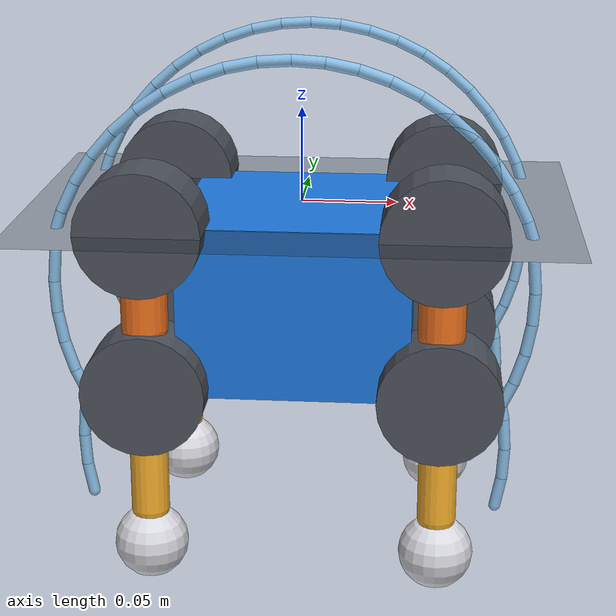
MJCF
<mujoco model="curl_robot_3d">

          <compiler angle="radian" autolimits="true"/>
          <option timestep="0.001" gravity="0 0 -9.81"
                  integrator="implicitfast" cone="elliptic"
                  iterations="20" ls_iterations="10"/>

          <visual>
            <global azimuth="120" elevation="-12" offwidth="960" offheight="720"/>
            <headlight ambient="0.35 0.35 0.35"
                       diffuse="0.65 0.65 0.65"
                       specular="0.20 0.20 0.20"/>
          </visual>

          <asset>
            <texture type="skybox" builtin="gradient" rgb1=".18 .23 .30"
                     rgb2=".02 .03 .05" width="512" height="512"/>
            <texture name="grid" type="2d" builtin="checker" width="512"
                     height="512" rgb1=".18 .22 .27" rgb2=".10 .13 .17"/>
            <material name="ground" texture="grid" texrepeat="1 1"
                      texuniform="true" reflectance="0.05"/>
          </asset>

          <default>
            <joint limited="true"/>
            <geom contype="0" conaffinity="1" condim="3"
                  friction="0.8 0.02 0.01"
                  solref="0.01 1" solimp="0.9 0.95 0.001"/>
            <default class="single_abduction_joint">
              <joint damping="0.01"
                     armature="0.0016"
                     range="-0.5235987756 3.665191429"/>
            </default>
            <default class="single_hip_joint">
              <joint damping="0.01"
                     armature="0.0016"
                     range="-2.268928028 1.396263402"/>
            </default>
            <default class="single_knee_joint">
              <joint damping="0.01"
                     armature="0.0016"
                     range="-0.3490658504 2.129301687"/>
            </default>
            <default class="single_servo">
              <general forcelimited="true"
                       forcerange="-3 3"
                       ctrllimited="true"
                       gainprm="5 0 0"
                       biastype="affine"
                       biasprm="0 -5 -0.1"/>
            </default>
            <default class="rolling_shell">
              <geom type="capsule" size="0.003"
                    contype="4" conaffinity="3"
                    solref="0.003 1" solimp="0.95 0.99 0.001"
                    group="1" rgba="0.55 0.78 0.95 0.88"/>
            </default>
            <default class="structure_collision">
              <geom contype="2" conaffinity="7"
                    solref="0.003 1" solimp="0.95 0.99 0.001"/>
            </default>
          </default>

          <worldbody>
            <light name="key" directional="true" castshadow="true"
                   pos="-1 -2 4" dir="0.25 0.15 -1"
                   diffuse="0.85 0.85 0.82" specular="0.20 0.20 0.20"/>
            <light name="fill" directional="true" castshadow="false"
                   pos="1 2 3" dir="-0.20 -0.30 -1"
                   diffuse="0.30 0.36 0.45" specular="0.05 0.05 0.05"/>
            <camera name="tracking" mode="targetbody" target="torso"
                    pos="0.45 -0.55 0.35"/>
            <geom name="floor" type="plane" size="12 6 0.05"
                  contype="1" conaffinity="1" material="ground"/>

            <body name="torso" pos="0 0 0">
              <freejoint name="root"/>
              <inertial pos="0.025 0 0.015"
                        mass="1.506"
                        diaginertia="0.002042720378 0.0085 0.0085"/>
              <geom name="torso_box_proxy" type="box"
                    class="structure_collision"
                    pos="0 0 -0.04507"
                    size="0.06 0.06 0.04507"
                    rgba="0.12 0.48 0.88 1"/>
<geom name="torso_left_shell_02" class="rolling_shell" fromto="0.1202577654 0.06 -0.007294097808 0.1150230018 0.06 0.008127018407"/>
<geom name="torso_left_shell_03" class="rolling_shell" fromto="0.1150230018 0.06 0.008127018407 0.1078201628 0.06 0.02273293108"/>
<geom name="torso_left_shell_04" class="rolling_shell" fromto="0.1078201628 0.06 0.02273293108 0.09877249087 0.06 0.03627372899"/>
<geom name="torso_left_shell_05" class="rolling_shell" fromto="0.09877249087 0.06 0.03627372899 0.08803479426 0.06 0.04851772533"/>
<geom name="torso_left_shell_06" class="rolling_shell" fromto="0.08803479426 0.06 0.04851772533 0.07579079791 0.06 0.05925542194"/>
<geom name="torso_left_shell_07" class="rolling_shell" fromto="0.07579079791 0.06 0.05925542194 0.06225 0.06 0.06830309385"/>
<geom name="torso_left_shell_08" class="rolling_shell" fromto="0.06225 0.06 0.06830309385 0.04764408733 0.06 0.07550593287"/>
<geom name="torso_left_shell_09" class="rolling_shell" fromto="0.04764408733 0.06 0.07550593287 0.03222297112 0.06 0.08074069645"/>
<geom name="torso_left_shell_10" class="rolling_shell" fromto="0.03222297112 0.06 0.08074069645 0.01625051093 0.06 0.08391781632"/>
<geom name="torso_left_shell_11" class="rolling_shell" fromto="0.01625051093 0.06 0.08391781632 7.623426325e-18 0.06 0.08498293108"/>
<geom name="torso_left_shell_12" class="rolling_shell" fromto="7.623426325e-18 0.06 0.08498293108 -0.01625051093 0.06 0.08391781632"/>
<geom name="torso_left_shell_13" class="rolling_shell" fromto="-0.01625051093 0.06 0.08391781632 -0.03222297112 0.06 0.08074069645"/>
<geom name="torso_left_shell_14" class="rolling_shell" fromto="-0.03222297112 0.06 0.08074069645 -0.04764408733 0.06 0.07550593287"/>
<geom name="torso_left_shell_15" class="rolling_shell" fromto="-0.04764408733 0.06 0.07550593287 -0.06225 0.06 0.06830309385"/>
<geom name="torso_left_shell_16" class="rolling_shell" fromto="-0.06225 0.06 0.06830309385 -0.07579079791 0.06 0.05925542194"/>
<geom name="torso_left_shell_17" class="rolling_shell" fromto="-0.07579079791 0.06 0.05925542194 -0.08803479426 0.06 0.04851772533"/>
<geom name="torso_left_shell_18" class="rolling_shell" fromto="-0.08803479426 0.06 0.04851772533 -0.09877249087 0.06 0.03627372899"/>
<geom name="torso_left_shell_19" class="rolling_shell" fromto="-0.09877249087 0.06 0.03627372899 -0.1078201628 0.06 0.02273293108"/>
<geom name="torso_left_shell_20" class="rolling_shell" fromto="-0.1078201628 0.06 0.02273293108 -0.1150230018 0.06 0.008127018407"/>
<geom name="torso_left_shell_21" class="rolling_shell" fromto="-0.1150230018 0.06 0.008127018407 -0.1202577654 0.06 -0.007294097808"/>
<geom name="torso_right_shell_02" class="rolling_shell" fromto="0.1202577654 -0.06 -0.007294097808 0.1150230018 -0.06 0.008127018407"/>
<geom name="torso_right_shell_03" class="rolling_shell" fromto="0.1150230018 -0.06 0.008127018407 0.1078201628 -0.06 0.02273293108"/>
<geom name="torso_right_shell_04" class="rolling_shell" fromto="0.1078201628 -0.06 0.02273293108 0.09877249087 -0.06 0.03627372899"/>
<geom name="torso_right_shell_05" class="rolling_shell" fromto="0.09877249087 -0.06 0.03627372899 0.08803479426 -0.06 0.04851772533"/>
<geom name="torso_right_shell_06" class="rolling_shell" fromto="0.08803479426 -0.06 0.04851772533 0.07579079791 -0.06 0.05925542194"/>
<geom name="torso_right_shell_07" class="rolling_shell" fromto="0.07579079791 -0.06 0.05925542194 0.06225 -0.06 0.06830309385"/>
<geom name="torso_right_shell_08" class="rolling_shell" fromto="0.06225 -0.06 0.06830309385 0.04764408733 -0.06 0.07550593287"/>
<geom name="torso_right_shell_09" class="rolling_shell" fromto="0.04764408733 -0.06 0.07550593287 0.03222297112 -0.06 0.08074069645"/>
<geom name="torso_right_shell_10" class="rolling_shell" fromto="0.03222297112 -0.06 0.08074069645 0.01625051093 -0.06 0.08391781632"/>
<geom name="torso_right_shell_11" class="rolling_shell" fromto="0.01625051093 -0.06 0.08391781632 7.623426325e-18 -0.06 0.08498293108"/>
<geom name="torso_right_shell_12" class="rolling_shell" fromto="7.623426325e-18 -0.06 0.08498293108 -0.01625051093 -0.06 0.08391781632"/>
<geom name="torso_right_shell_13" class="rolling_shell" fromto="-0.01625051093 -0.06 0.08391781632 -0.03222297112 -0.06 0.08074069645"/>
<geom name="torso_right_shell_14" class="rolling_shell" fromto="-0.03222297112 -0.06 0.08074069645 -0.04764408733 -0.06 0.07550593287"/>
<geom name="torso_right_shell_15" class="rolling_shell" fromto="-0.04764408733 -0.06 0.07550593287 -0.06225 -0.06 0.06830309385"/>
<geom name="torso_right_shell_16" class="rolling_shell" fromto="-0.06225 -0.06 0.06830309385 -0.07579079791 -0.06 0.05925542194"/>
<geom name="torso_right_shell_17" class="rolling_shell" fromto="-0.07579079791 -0.06 0.05925542194 -0.08803479426 -0.06 0.04851772533"/>
<geom name="torso_right_shell_18" class="rolling_shell" fromto="-0.08803479426 -0.06 0.04851772533 -0.09877249087 -0.06 0.03627372899"/>
<geom name="torso_right_shell_19" class="rolling_shell" fromto="-0.09877249087 -0.06 0.03627372899 -0.1078201628 -0.06 0.02273293108"/>
<geom name="torso_right_shell_20" class="rolling_shell" fromto="-0.1078201628 -0.06 0.02273293108 -0.1150230018 -0.06 0.008127018407"/>
<geom name="torso_right_shell_21" class="rolling_shell" fromto="-0.1150230018 -0.06 0.008127018407 -0.1202577654 -0.06 -0.007294097808"/>

            <body name="front_left_hip_abduction_body" pos="0.0752 0.06 0">
              <joint name="front_left_hip_abduction" type="hinge" axis="1 0 0"
                   class="single_abduction_joint"/>
              <inertial pos="0 0 0" mass="0.001"
                        diaginertia="1e-6 1e-6 1e-6"/>
              <body name="front_left_thigh" pos="0 0 0">
                <joint name="front_left_hip" type="hinge" axis="0 -1 0"
                       class="single_hip_joint"/>
                <inertial pos="0 0 -0.0573059111"
                          mass="0.366"
                          diaginertia="0.0013365 0.0013365 0.0001"/>
                <geom name="front_left_thigh_proxy" type="capsule"
                      class="structure_collision"
                      fromto="0 0 -0.032 0 0 -0.0524547808"
                      size="0.012"
                      rgba="0.95 0.45 0.12 1"/>
                <geom name="front_left_hip_motor" type="cylinder"
                      size="0.032 0.0165"
                      euler="1.570796327 0 0" contype="0" conaffinity="0"
                      rgba="0.30 0.32 0.36 1"/>
                <geom name="front_left_hip_motor_collision_00" type="capsule"
                      class="structure_collision"
                      fromto="-0.0155 0 -0 0.0155 0 0"
                      size="0.0165" rgba="0 0 0 0"/>
                <geom name="front_left_hip_motor_collision_01" type="capsule"
                      class="structure_collision"
                      fromto="-0.01096015511 0 -0.01096015511 0.01096015511 0 0.01096015511"
                      size="0.0165" rgba="0 0 0 0"/>
                <geom name="front_left_hip_motor_collision_02" type="capsule"
                      class="structure_collision"
                      fromto="-9.491012693e-19 0 -0.0155 9.491012693e-19 0 0.0155"
                      size="0.0165" rgba="0 0 0 0"/>
                <geom name="front_left_hip_motor_collision_03" type="capsule"
                      class="structure_collision"
                      fromto="0.01096015511 0 -0.01096015511 -0.01096015511 0 0.01096015511"
                      size="0.0165" rgba="0 0 0 0"/>
<geom name="front_left_thigh_shell_00" class="rolling_shell" fromto="0.04462688643 0 -0.04472728188 0.04536563822 0 -0.02845866728"/>
<geom name="front_left_thigh_shell_01" class="rolling_shell" fromto="0.04536563822 0 -0.02845866728 0.04397458958 0 -0.01223280648"/>
<geom name="front_left_thigh_shell_44" class="rolling_shell" fromto="0.02116443565 0 -0.1047505513 0.02993852077 0 -0.09103089369"/>
<geom name="front_left_thigh_shell_45" class="rolling_shell" fromto="0.02993852077 0 -0.09103089369 0.03684676771 0 -0.07628336171"/>
<geom name="front_left_thigh_shell_46" class="rolling_shell" fromto="0.03684676771 0 -0.07628336171 0.04177097444 0 -0.06076028976"/>
<geom name="front_left_thigh_shell_47" class="rolling_shell" fromto="0.04177097444 0 -0.06076028976 0.04462688643 0 -0.04472728188"/>
                <body name="front_left_shank" pos="0 0 -0.0844547808">
                  <joint name="front_left_knee" type="hinge" axis="0 1 0"
                         class="single_knee_joint"/>
                  <inertial pos="0 0 -0.0897967059"
                            mass="0.05"
                            diaginertia="7.75375e-05 7.75375e-05 2e-05"/>
                  <geom name="front_left_shank_proxy" type="capsule"
                        class="structure_collision"
                        fromto="0 0 -0.032 0 0 -0.0685136895"
                        size="0.01"
                        rgba="0.98 0.70 0.18 1"/>
                  <geom name="front_left_knee_motor" type="cylinder"
                        size="0.032 0.0165"
                        euler="1.570796327 0 0" contype="0" conaffinity="0"
                        rgba="0.30 0.32 0.36 1"/>
                  <geom name="front_left_knee_motor_collision_00" type="capsule"
                        class="structure_collision"
                        fromto="-0.0155 0 -0 0.0155 0 0"
                        size="0.0165" rgba="0 0 0 0"/>
                  <geom name="front_left_knee_motor_collision_01" type="capsule"
                        class="structure_collision"
                        fromto="-0.01096015511 0 -0.01096015511 0.01096015511 0 0.01096015511"
                        size="0.0165" rgba="0 0 0 0"/>
                  <geom name="front_left_knee_motor_collision_02" type="capsule"
                        class="structure_collision"
                        fromto="-9.491012693e-19 0 -0.0155 9.491012693e-19 0 0.0155"
                        size="0.0165" rgba="0 0 0 0"/>
                  <geom name="front_left_knee_motor_collision_03" type="capsule"
                        class="structure_collision"
                        fromto="0.01096015511 0 -0.01096015511 -0.01096015511 0 0.01096015511"
                        size="0.0165" rgba="0 0 0 0"/>
<geom name="front_left_shank_shell_40" class="rolling_shell" fromto="0.02985616447 0 -0.06020902005 0.03282486366 0 -0.04419651243"/>
<geom name="front_left_shank_shell_41" class="rolling_shell" fromto="0.03282486366 0 -0.04419651243 0.03367811357 0 -0.02793350104"/>
<geom name="front_left_shank_shell_42" class="rolling_shell" fromto="0.03367811357 0 -0.02793350104 0.03240131485 0 -0.0116982505"/>
<geom name="front_left_shank_shell_43" class="rolling_shell" fromto="0.03240131485 0 -0.0116982505 0.02901631389 0 0.004231449545"/>
                  <geom name="front_left_foot_proxy" type="sphere"
                        class="structure_collision"
                        pos="0 0 -0.0880136895"
                        size="0.0195"
                        rgba="0.85 0.85 0.88 1"/>
                  <site name="front_left_foot_site"
                        pos="0 0 -0.0880136895" size="0.004"/>
                </body>
              </body>
            </body>
            <body name="front_right_hip_abduction_body" pos="0.0752 -0.06 0">
              <joint name="front_right_hip_abduction" type="hinge" axis="-1 0 0"
                   class="single_abduction_joint"/>
              <inertial pos="0 0 0" mass="0.001"
                        diaginertia="1e-6 1e-6 1e-6"/>
              <body name="front_right_thigh" pos="0 0 0">
                <joint name="front_right_hip" type="hinge" axis="0 -1 0"
                       class="single_hip_joint"/>
                <inertial pos="0 0 -0.0573059111"
                          mass="0.366"
                          diaginertia="0.0013365 0.0013365 0.0001"/>
                <geom name="front_right_thigh_proxy" type="capsule"
                      class="structure_collision"
                      fromto="0 0 -0.032 0 0 -0.0524547808"
                      size="0.012"
                      rgba="0.95 0.45 0.12 1"/>
                <geom name="front_right_hip_motor" type="cylinder"
                      size="0.032 0.0165"
                      euler="1.570796327 0 0" contype="0" conaffinity="0"
                      rgba="0.30 0.32 0.36 1"/>
                <geom name="front_right_hip_motor_collision_00" type="capsule"
                      class="structure_collision"
                      fromto="-0.0155 0 -0 0.0155 0 0"
                      size="0.0165" rgba="0 0 0 0"/>
                <geom name="front_right_hip_motor_collision_01" type="capsule"
                      class="structure_collision"
                      fromto="-0.01096015511 0 -0.01096015511 0.01096015511 0 0.01096015511"
                      size="0.0165" rgba="0 0 0 0"/>
                <geom name="front_right_hip_motor_collision_02" type="capsule"
                      class="structure_collision"
                      fromto="-9.491012693e-19 0 -0.0155 9.491012693e-19 0 0.0155"
                      size="0.0165" rgba="0 0 0 0"/>
                <geom name="front_right_hip_motor_collision_03" type="capsule"
                      class="structure_collision"
                      fromto="0.01096015511 0 -0.01096015511 -0.01096015511 0 0.01096015511"
                      size="0.0165" rgba="0 0 0 0"/>
<geom name="front_right_thigh_shell_00" class="rolling_shell" fromto="0.04462688643 0 -0.04472728188 0.04536563822 0 -0.02845866728"/>
<geom name="front_right_thigh_shell_01" class="rolling_shell" fromto="0.04536563822 0 -0.02845866728 0.04397458958 0 -0.01223280648"/>
<geom name="front_right_thigh_shell_44" class="rolling_shell" fromto="0.02116443565 0 -0.1047505513 0.02993852077 0 -0.09103089369"/>
<geom name="front_right_thigh_shell_45" class="rolling_shell" fromto="0.02993852077 0 -0.09103089369 0.03684676771 0 -0.07628336171"/>
<geom name="front_right_thigh_shell_46" class="rolling_shell" fromto="0.03684676771 0 -0.07628336171 0.04177097444 0 -0.06076028976"/>
<geom name="front_right_thigh_shell_47" class="rolling_shell" fromto="0.04177097444 0 -0.06076028976 0.04462688643 0 -0.04472728188"/>
                <body name="front_right_shank" pos="0 0 -0.0844547808">
                  <joint name="front_right_knee" type="hinge" axis="0 1 0"
                         class="single_knee_joint"/>
                  <inertial pos="0 0 -0.0897967059"
                            mass="0.05"
                            diaginertia="7.75375e-05 7.75375e-05 2e-05"/>
                  <geom name="front_right_shank_proxy" type="capsule"
                        class="structure_collision"
                        fromto="0 0 -0.032 0 0 -0.0685136895"
                        size="0.01"
                        rgba="0.98 0.70 0.18 1"/>
                  <geom name="front_right_knee_motor" type="cylinder"
                        size="0.032 0.0165"
                        euler="1.570796327 0 0" contype="0" conaffinity="0"
                        rgba="0.30 0.32 0.36 1"/>
                  <geom name="front_right_knee_motor_collision_00" type="capsule"
                        class="structure_collision"
                        fromto="-0.0155 0 -0 0.0155 0 0"
                        size="0.0165" rgba="0 0 0 0"/>
                  <geom name="front_right_knee_motor_collision_01" type="capsule"
                        class="structure_collision"
                        fromto="-0.01096015511 0 -0.01096015511 0.01096015511 0 0.01096015511"
                        size="0.0165" rgba="0 0 0 0"/>
                  <geom name="front_right_knee_motor_collision_02" type="capsule"
                        class="structure_collision"
                        fromto="-9.491012693e-19 0 -0.0155 9.491012693e-19 0 0.0155"
                        size="0.0165" rgba="0 0 0 0"/>
                  <geom name="front_right_knee_motor_collision_03" type="capsule"
                        class="structure_collision"
                        fromto="0.01096015511 0 -0.01096015511 -0.01096015511 0 0.01096015511"
                        size="0.0165" rgba="0 0 0 0"/>
<geom name="front_right_shank_shell_40" class="rolling_shell" fromto="0.02985616447 0 -0.06020902005 0.03282486366 0 -0.04419651243"/>
<geom name="front_right_shank_shell_41" class="rolling_shell" fromto="0.03282486366 0 -0.04419651243 0.03367811357 0 -0.02793350104"/>
<geom name="front_right_shank_shell_42" class="rolling_shell" fromto="0.03367811357 0 -0.02793350104 0.03240131485 0 -0.0116982505"/>
<geom name="front_right_shank_shell_43" class="rolling_shell" fromto="0.03240131485 0 -0.0116982505 0.02901631389 0 0.004231449545"/>
                  <geom name="front_right_foot_proxy" type="sphere"
                        class="structure_collision"
                        pos="0 0 -0.0880136895"
                        size="0.0195"
                        rgba="0.85 0.85 0.88 1"/>
                  <site name="front_right_foot_site"
                        pos="0 0 -0.0880136895" size="0.004"/>
                </body>
              </body>
            </body>
            <body name="rear_left_hip_abduction_body" pos="-0.0752 0.06 0">
              <joint name="rear_left_hip_abduction" type="hinge" axis="1 0 0"
                   class="single_abduction_joint"/>
              <inertial pos="0 0 0" mass="0.001"
                        diaginertia="1e-6 1e-6 1e-6"/>
              <body name="rear_left_thigh" pos="0 0 0">
                <joint name="rear_left_hip" type="hinge" axis="0 1 0"
                       class="single_hip_joint"/>
                <inertial pos="0 0 -0.0573059111"
                          mass="0.366"
                          diaginertia="0.0013365 0.0013365 0.0001"/>
                <geom name="rear_left_thigh_proxy" type="capsule"
                      class="structure_collision"
                      fromto="0 0 -0.032 0 0 -0.0524547808"
                      size="0.012"
                      rgba="0.95 0.45 0.12 1"/>
                <geom name="rear_left_hip_motor" type="cylinder"
                      size="0.032 0.0165"
                      euler="1.570796327 0 0" contype="0" conaffinity="0"
                      rgba="0.30 0.32 0.36 1"/>
                <geom name="rear_left_hip_motor_collision_00" type="capsule"
                      class="structure_collision"
                      fromto="-0.0155 0 -0 0.0155 0 0"
                      size="0.0165" rgba="0 0 0 0"/>
                <geom name="rear_left_hip_motor_collision_01" type="capsule"
                      class="structure_collision"
                      fromto="-0.01096015511 0 -0.01096015511 0.01096015511 0 0.01096015511"
                      size="0.0165" rgba="0 0 0 0"/>
                <geom name="rear_left_hip_motor_collision_02" type="capsule"
                      class="structure_collision"
                      fromto="-9.491012693e-19 0 -0.0155 9.491012693e-19 0 0.0155"
                      size="0.0165" rgba="0 0 0 0"/>
                <geom name="rear_left_hip_motor_collision_03" type="capsule"
                      class="structure_collision"
                      fromto="0.01096015511 0 -0.01096015511 -0.01096015511 0 0.01096015511"
                      size="0.0165" rgba="0 0 0 0"/>
<geom name="rear_left_thigh_shell_22" class="rolling_shell" fromto="-0.04397458958 0 -0.01223280648 -0.04536563822 0 -0.02845866728"/>
<geom name="rear_left_thigh_shell_23" class="rolling_shell" fromto="-0.04536563822 0 -0.02845866728 -0.04462688643 0 -0.04472728188"/>
<geom name="rear_left_thigh_shell_24" class="rolling_shell" fromto="-0.04462688643 0 -0.04472728188 -0.04177097444 0 -0.06076028976"/>
<geom name="rear_left_thigh_shell_25" class="rolling_shell" fromto="-0.04177097444 0 -0.06076028976 -0.03684676771 0 -0.07628336171"/>
<geom name="rear_left_thigh_shell_26" class="rolling_shell" fromto="-0.03684676771 0 -0.07628336171 -0.02993852077 0 -0.09103089369"/>
<geom name="rear_left_thigh_shell_27" class="rolling_shell" fromto="-0.02993852077 0 -0.09103089369 -0.02116443565 0 -0.1047505513"/>
                <body name="rear_left_shank" pos="0 0 -0.0844547808">
                  <joint name="rear_left_knee" type="hinge" axis="0 -1 0"
                         class="single_knee_joint"/>
                  <inertial pos="0 0 -0.0897967059"
                            mass="0.05"
                            diaginertia="7.75375e-05 7.75375e-05 2e-05"/>
                  <geom name="rear_left_shank_proxy" type="capsule"
                        class="structure_collision"
                        fromto="0 0 -0.032 0 0 -0.0685136895"
                        size="0.01"
                        rgba="0.98 0.70 0.18 1"/>
                  <geom name="rear_left_knee_motor" type="cylinder"
                        size="0.032 0.0165"
                        euler="1.570796327 0 0" contype="0" conaffinity="0"
                        rgba="0.30 0.32 0.36 1"/>
                  <geom name="rear_left_knee_motor_collision_00" type="capsule"
                        class="structure_collision"
                        fromto="-0.0155 0 -0 0.0155 0 0"
                        size="0.0165" rgba="0 0 0 0"/>
                  <geom name="rear_left_knee_motor_collision_01" type="capsule"
                        class="structure_collision"
                        fromto="-0.01096015511 0 -0.01096015511 0.01096015511 0 0.01096015511"
                        size="0.0165" rgba="0 0 0 0"/>
                  <geom name="rear_left_knee_motor_collision_02" type="capsule"
                        class="structure_collision"
                        fromto="-9.491012693e-19 0 -0.0155 9.491012693e-19 0 0.0155"
                        size="0.0165" rgba="0 0 0 0"/>
                  <geom name="rear_left_knee_motor_collision_03" type="capsule"
                        class="structure_collision"
                        fromto="0.01096015511 0 -0.01096015511 -0.01096015511 0 0.01096015511"
                        size="0.0165" rgba="0 0 0 0"/>
<geom name="rear_left_shank_shell_28" class="rolling_shell" fromto="-0.02901631389 0 0.004231449545 -0.03240131485 0 -0.0116982505"/>
<geom name="rear_left_shank_shell_29" class="rolling_shell" fromto="-0.03240131485 0 -0.0116982505 -0.03367811357 0 -0.02793350104"/>
<geom name="rear_left_shank_shell_30" class="rolling_shell" fromto="-0.03367811357 0 -0.02793350104 -0.03282486366 0 -0.04419651243"/>
<geom name="rear_left_shank_shell_31" class="rolling_shell" fromto="-0.03282486366 0 -0.04419651243 -0.02985616447 0 -0.06020902005"/>
                  <geom name="rear_left_foot_proxy" type="sphere"
                        class="structure_collision"
                        pos="0 0 -0.0880136895"
                        size="0.0195"
                        rgba="0.85 0.85 0.88 1"/>
                  <site name="rear_left_foot_site"
                        pos="0 0 -0.0880136895" size="0.004"/>
                </body>
              </body>
            </body>
            <body name="rear_right_hip_abduction_body" pos="-0.0752 -0.06 0">
              <joint name="rear_right_hip_abduction" type="hinge" axis="-1 0 0"
                   class="single_abduction_joint"/>
              <inertial pos="0 0 0" mass="0.001"
                        diaginertia="1e-6 1e-6 1e-6"/>
              <body name="rear_right_thigh" pos="0 0 0">
                <joint name="rear_right_hip" type="hinge" axis="0 1 0"
                       class="single_hip_joint"/>
                <inertial pos="0 0 -0.0573059111"
                          mass="0.366"
                          diaginertia="0.0013365 0.0013365 0.0001"/>
                <geom name="rear_right_thigh_proxy" type="capsule"
                      class="structure_collision"
                      fromto="0 0 -0.032 0 0 -0.0524547808"
                      size="0.012"
                      rgba="0.95 0.45 0.12 1"/>
                <geom name="rear_right_hip_motor" type="cylinder"
                      size="0.032 0.0165"
                      euler="1.570796327 0 0" contype="0" conaffinity="0"
                      rgba="0.30 0.32 0.36 1"/>
                <geom name="rear_right_hip_motor_collision_00" type="capsule"
                      class="structure_collision"
                      fromto="-0.0155 0 -0 0.0155 0 0"
                      size="0.0165" rgba="0 0 0 0"/>
                <geom name="rear_right_hip_motor_collision_01" type="capsule"
                      class="structure_collision"
                      fromto="-0.01096015511 0 -0.01096015511 0.01096015511 0 0.01096015511"
                      size="0.0165" rgba="0 0 0 0"/>
                <geom name="rear_right_hip_motor_collision_02" type="capsule"
                      class="structure_collision"
                      fromto="-9.491012693e-19 0 -0.0155 9.491012693e-19 0 0.0155"
                      size="0.0165" rgba="0 0 0 0"/>
                <geom name="rear_right_hip_motor_collision_03" type="capsule"
                      class="structure_collision"
                      fromto="0.01096015511 0 -0.01096015511 -0.01096015511 0 0.01096015511"
                      size="0.0165" rgba="0 0 0 0"/>
<geom name="rear_right_thigh_shell_22" class="rolling_shell" fromto="-0.04397458958 0 -0.01223280648 -0.04536563822 0 -0.02845866728"/>
<geom name="rear_right_thigh_shell_23" class="rolling_shell" fromto="-0.04536563822 0 -0.02845866728 -0.04462688643 0 -0.04472728188"/>
<geom name="rear_right_thigh_shell_24" class="rolling_shell" fromto="-0.04462688643 0 -0.04472728188 -0.04177097444 0 -0.06076028976"/>
<geom name="rear_right_thigh_shell_25" class="rolling_shell" fromto="-0.04177097444 0 -0.06076028976 -0.03684676771 0 -0.07628336171"/>
<geom name="rear_right_thigh_shell_26" class="rolling_shell" fromto="-0.03684676771 0 -0.07628336171 -0.02993852077 0 -0.09103089369"/>
<geom name="rear_right_thigh_shell_27" class="rolling_shell" fromto="-0.02993852077 0 -0.09103089369 -0.02116443565 0 -0.1047505513"/>
                <body name="rear_right_shank" pos="0 0 -0.0844547808">
                  <joint name="rear_right_knee" type="hinge" axis="0 -1 0"
                         class="single_knee_joint"/>
                  <inertial pos="0 0 -0.0897967059"
                            mass="0.05"
                            diaginertia="7.75375e-05 7.75375e-05 2e-05"/>
                  <geom name="rear_right_shank_proxy" type="capsule"
                        class="structure_collision"
                        fromto="0 0 -0.032 0 0 -0.0685136895"
                        size="0.01"
                        rgba="0.98 0.70 0.18 1"/>
                  <geom name="rear_right_knee_motor" type="cylinder"
                        size="0.032 0.0165"
                        euler="1.570796327 0 0" contype="0" conaffinity="0"
                        rgba="0.30 0.32 0.36 1"/>
                  <geom name="rear_right_knee_motor_collision_00" type="capsule"
                        class="structure_collision"
                        fromto="-0.0155 0 -0 0.0155 0 0"
                        size="0.0165" rgba="0 0 0 0"/>
                  <geom name="rear_right_knee_motor_collision_01" type="capsule"
                        class="structure_collision"
                        fromto="-0.01096015511 0 -0.01096015511 0.01096015511 0 0.01096015511"
                        size="0.0165" rgba="0 0 0 0"/>
                  <geom name="rear_right_knee_motor_collision_02" type="capsule"
                        class="structure_collision"
                        fromto="-9.491012693e-19 0 -0.0155 9.491012693e-19 0 0.0155"
                        size="0.0165" rgba="0 0 0 0"/>
                  <geom name="rear_right_knee_motor_collision_03" type="capsule"
                        class="structure_collision"
                        fromto="0.01096015511 0 -0.01096015511 -0.01096015511 0 0.01096015511"
                        size="0.0165" rgba="0 0 0 0"/>
<geom name="rear_right_shank_shell_28" class="rolling_shell" fromto="-0.02901631389 0 0.004231449545 -0.03240131485 0 -0.0116982505"/>
<geom name="rear_right_shank_shell_29" class="rolling_shell" fromto="-0.03240131485 0 -0.0116982505 -0.03367811357 0 -0.02793350104"/>
<geom name="rear_right_shank_shell_30" class="rolling_shell" fromto="-0.03367811357 0 -0.02793350104 -0.03282486366 0 -0.04419651243"/>
<geom name="rear_right_shank_shell_31" class="rolling_shell" fromto="-0.03282486366 0 -0.04419651243 -0.02985616447 0 -0.06020902005"/>
                  <geom name="rear_right_foot_proxy" type="sphere"
                        class="structure_collision"
                        pos="0 0 -0.0880136895"
                        size="0.0195"
                        rgba="0.85 0.85 0.88 1"/>
                  <site name="rear_right_foot_site"
                        pos="0 0 -0.0880136895" size="0.004"/>
                </body>
              </body>
            </body>
            </body>
          </worldbody>

          <contact>
            <exclude body1="torso" body2="front_left_thigh"/>
            <exclude body1="torso" body2="front_left_shank"/>
            <exclude body1="torso" body2="front_right_thigh"/>
            <exclude body1="torso" body2="front_right_shank"/>
            <exclude body1="torso" body2="rear_left_thigh"/>
            <exclude body1="torso" body2="rear_left_shank"/>
            <exclude body1="torso" body2="rear_right_thigh"/>
            <exclude body1="torso" body2="rear_right_shank"/>
            <pair name="left_foot_pair"
                  geom1="front_left_foot_proxy" geom2="rear_left_foot_proxy"
                  condim="3" friction="0.8 0.02 0.01"
                  solref="0.002 1" solimp="0.97 0.995 0.001"/>
            <pair name="right_foot_pair"
                  geom1="front_right_foot_proxy" geom2="rear_right_foot_proxy"
                  condim="3" friction="0.8 0.02 0.01"
                  solref="0.002 1" solimp="0.97 0.995 0.001"/>
          </contact>

          <actuator>
            <general name="front_left_hip_abduction_servo" joint="front_left_hip_abduction"
                     class="single_servo"
                     ctrlrange="-0.5235987756 3.665191429"/>
            <general name="front_left_hip_servo" joint="front_left_hip"
                     class="single_servo"
                     ctrlrange="-2.268928028 1.396263402"/>
            <general name="front_left_knee_servo" joint="front_left_knee"
                     class="single_servo"
                     ctrlrange="-0.3490658504 2.129301687"/>
            <general name="front_right_hip_abduction_servo" joint="front_right_hip_abduction"
                     class="single_servo"
                     ctrlrange="-0.5235987756 3.665191429"/>
            <general name="front_right_hip_servo" joint="front_right_hip"
                     class="single_servo"
                     ctrlrange="-2.268928028 1.396263402"/>
            <general name="front_right_knee_servo" joint="front_right_knee"
                     class="single_servo"
                     ctrlrange="-0.3490658504 2.129301687"/>
            <general name="rear_left_hip_abduction_servo" joint="rear_left_hip_abduction"
                     class="single_servo"
                     ctrlrange="-0.5235987756 3.665191429"/>
            <general name="rear_left_hip_servo" joint="rear_left_hip"
                     class="single_servo"
                     ctrlrange="-2.268928028 1.396263402"/>
            <general name="rear_left_knee_servo" joint="rear_left_knee"
                     class="single_servo"
                     ctrlrange="-0.3490658504 2.129301687"/>
            <general name="rear_right_hip_abduction_servo" joint="rear_right_hip_abduction"
                     class="single_servo"
                     ctrlrange="-0.5235987756 3.665191429"/>
            <general name="rear_right_hip_servo" joint="rear_right_hip"
                     class="single_servo"
                     ctrlrange="-2.268928028 1.396263402"/>
            <general name="rear_right_knee_servo" joint="rear_right_knee"
                     class="single_servo"
                     ctrlrange="-0.3490658504 2.129301687"/>
          </actuator>

          <sensor>
            <framequat name="torso_quat" objtype="body" objname="torso"/>
            <framepos name="torso_position" objtype="body" objname="torso"/>
            <framelinvel name="torso_velocity" objtype="body" objname="torso"/>
            <frameangvel name="torso_angular_velocity" objtype="body" objname="torso"/>
            <jointpos name="front_left_hip_abduction_position" joint="front_left_hip_abduction"/>
            <jointpos name="front_left_hip_position" joint="front_left_hip"/>
            <jointpos name="front_left_knee_position" joint="front_left_knee"/>
            <jointpos name="front_right_hip_abduction_position" joint="front_right_hip_abduction"/>
            <jointpos name="front_right_hip_position" joint="front_right_hip"/>
            <jointpos name="front_right_knee_position" joint="front_right_knee"/>
            <jointpos name="rear_left_hip_abduction_position" joint="rear_left_hip_abduction"/>
            <jointpos name="rear_left_hip_position" joint="rear_left_hip"/>
            <jointpos name="rear_left_knee_position" joint="rear_left_knee"/>
            <jointpos name="rear_right_hip_abduction_position" joint="rear_right_hip_abduction"/>
            <jointpos name="rear_right_hip_position" joint="rear_right_hip"/>
            <jointpos name="rear_right_knee_position" joint="rear_right_knee"/>
          </sensor>

          <keyframe>
            <key name="open"
                 qpos="0 0 0.1919684703 1 0 0 0
                       0 0 0
                       0 0 0
                       0 0 0
                       0 0 0"
                 ctrl="0 0 0
                       0 0 0
                       0 0 0
                       0 0 0"/>
             <key name="stand"
                 qpos="0 0 0.1703 1 0 0 0
                       0 0.6 1.0
                       0 0.6 1.0
                       0 0.6 1.0
                       0 0.6 1.0"
                 ctrl="0 0.6 1.0
                       0 0.6 1.0
                       0 0.6 1.0
                       0 0.6 1.0"/>
            <key name="stand_previous"
                 qpos="0 0 0.1855619231 1 0 0 0
                       0 0.33532733 0.53234438
                       0 0.33532733 0.53234438
                       0 0.33532733 0.53234438
                       0 0.33532733 0.53234438"
                 ctrl="0 0.33532733 0.53234438
                       0 0.33532733 0.53234438
                       0 0.33532733 0.53234438
                       0 0.33532733 0.53234438"/>
            <key name="park"
                 qpos="0 0 0.3671041158 1 0 0 0
                       0 0.4983797927 0.3491569025
                       0 0.4983797927 0.3491569025
                       0 0.434095281 0.0107701707
                       0 0.434095281 0.0107701707"
                 ctrl="0 0.4983797927 0.3491569025
                       0 0.4983797927 0.3491569025
                       0 0.434095281 0.0107701707
                       0 0.434095281 0.0107701707"/>
            <key name="compact"
                 qpos="0 0 0.164855389 1 0 0 0
                       0 0.1108283051 0.9092586986
                       0 0.1108283051 0.9092586986
                       0 0.1108283051 0.9092586986
                       0 0.1108283051 0.9092586986"
                 ctrl="0 0.1108283051 0.9092586986
                       0 0.1108283051 0.9092586986
                       0 0.1108283051 0.9092586986
                       0 0.1108283051 0.9092586986"/>
          </keyframe>
        </mujoco>
